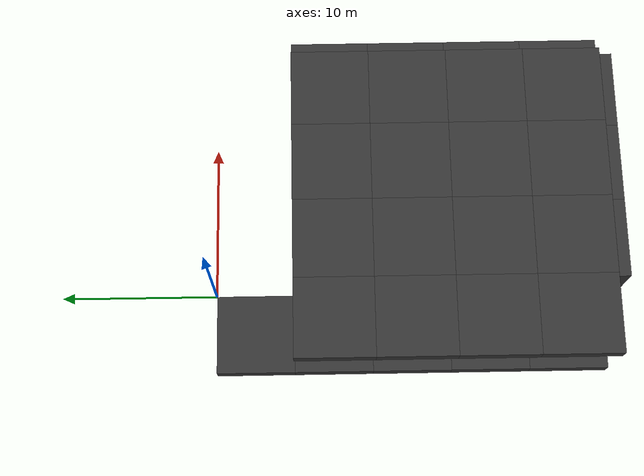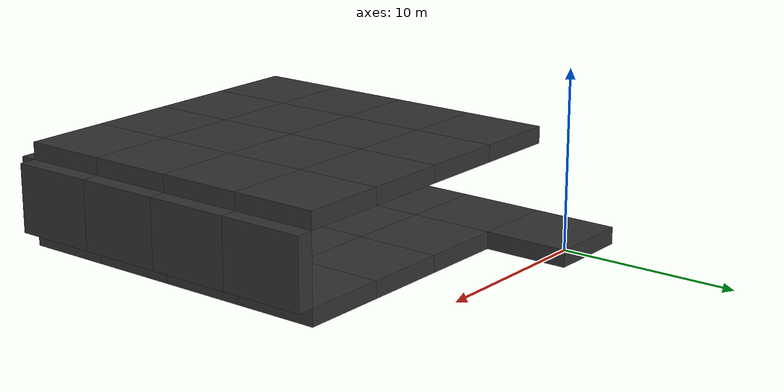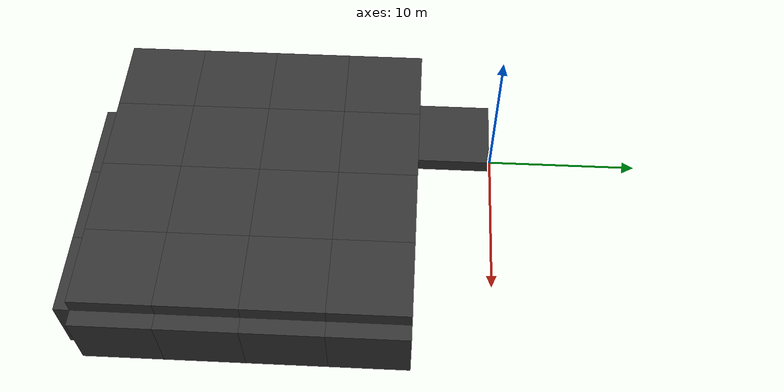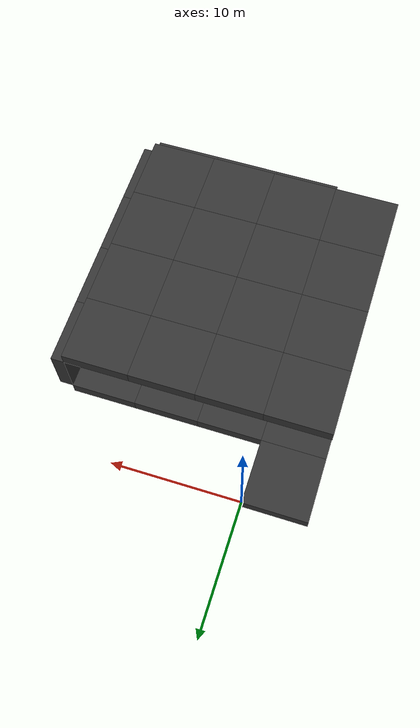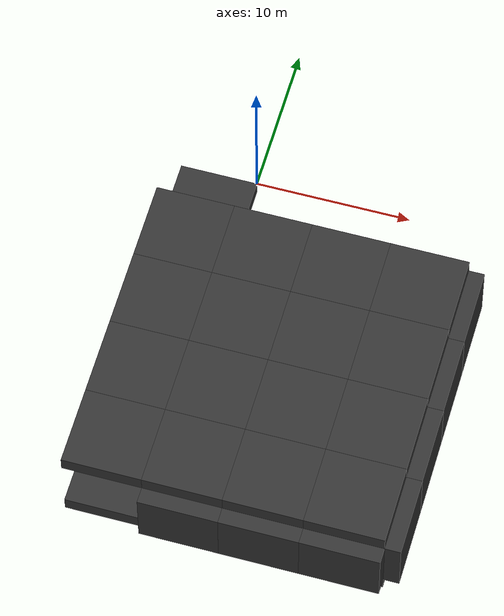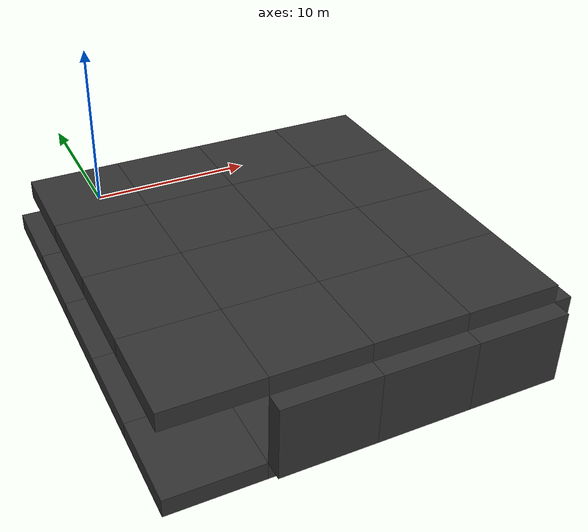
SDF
<sdf version="1.7">
 <world name="RG1">
  <model name="floor_28">
   <static>true</static>
   <pose>-2.5 -22.5 -0.5 0.0 0.0 0.0</pose>
   <link name="floor_28-base-link">
    <visual name="floor_28-visual">
     <geometry><box><size>5 5 1.0</size></box></geometry>
     <material><diffuse>0.2 0.2 0.2 1</diffuse><specular>0.1 0.1 0.1 1</specular></material>
    </visual>
    <collision name="floor_28-collision"><geometry><box><size>5 5 1.0</size></box></geometry></collision>
   </link>
  </model>
  <model name="ceiling_28">
   <static>true</static>
   <pose>-2.5 -22.5 4.5 0.0 0.0 0.0</pose>
   <link name="ceiling_28-base-link">
    <visual name="ceiling_28-visual">
     <geometry><box><size>5 5 1.0</size></box></geometry>
     <material><diffuse>0.2 0.2 0.2 1</diffuse><specular>0.1 0.1 0.1 1</specular></material>
    </visual>
    <collision name="ceiling_28-collision"><geometry><box><size>5 5 1.0</size></box></geometry></collision>
    <light type="point" name="ceiling_28-light">
     <pose>0 0 -1 0 0 0</pose>
     <cast_shadows>false</cast_shadows>
     <diffuse>0.8 0.8 0.8 1</diffuse>
     <attenuation>
      <range>10</range>
      <constant>0.8</constant>
      <linear>0.05</linear>
      <quadratic>0.01</quadratic>
     </attenuation>
    </light>
   </link>
  </model>
  <model name="floor_29">
   <static>true</static>
   <pose>-2.5 -17.5 -0.5 0.0 0.0 0.0</pose>
   <link name="floor_29-base-link">
    <visual name="floor_29-visual">
     <geometry><box><size>5 5 1.0</size></box></geometry>
     <material><diffuse>0.2 0.2 0.2 1</diffuse><specular>0.1 0.1 0.1 1</specular></material>
    </visual>
    <collision name="floor_29-collision"><geometry><box><size>5 5 1.0</size></box></geometry></collision>
   </link>
  </model>
  <model name="ceiling_29">
   <static>true</static>
   <pose>-2.5 -17.5 4.5 0.0 0.0 0.0</pose>
   <link name="ceiling_29-base-link">
    <visual name="ceiling_29-visual">
     <geometry><box><size>5 5 1.0</size></box></geometry>
     <material><diffuse>0.2 0.2 0.2 1</diffuse><specular>0.1 0.1 0.1 1</specular></material>
    </visual>
    <collision name="ceiling_29-collision"><geometry><box><size>5 5 1.0</size></box></geometry></collision>
    <light type="point" name="ceiling_29-light">
     <pose>0 0 -1 0 0 0</pose>
     <cast_shadows>false</cast_shadows>
     <diffuse>0.8 0.8 0.8 1</diffuse>
     <attenuation>
      <range>10</range>
      <constant>0.8</constant>
      <linear>0.05</linear>
      <quadratic>0.01</quadratic>
     </attenuation>
    </light>
   </link>
  </model>
  <model name="floor_30">
   <static>true</static>
   <pose>-2.5 -12.5 -0.5 0.0 0.0 0.0</pose>
   <link name="floor_30-base-link">
    <visual name="floor_30-visual">
     <geometry><box><size>5 5 1.0</size></box></geometry>
     <material><diffuse>0.2 0.2 0.2 1</diffuse><specular>0.1 0.1 0.1 1</specular></material>
    </visual>
    <collision name="floor_30-collision"><geometry><box><size>5 5 1.0</size></box></geometry></collision>
   </link>
  </model>
  <model name="ceiling_30">
   <static>true</static>
   <pose>-2.5 -12.5 4.5 0.0 0.0 0.0</pose>
   <link name="ceiling_30-base-link">
    <visual name="ceiling_30-visual">
     <geometry><box><size>5 5 1.0</size></box></geometry>
     <material><diffuse>0.2 0.2 0.2 1</diffuse><specular>0.1 0.1 0.1 1</specular></material>
    </visual>
    <collision name="ceiling_30-collision"><geometry><box><size>5 5 1.0</size></box></geometry></collision>
    <light type="point" name="ceiling_30-light">
     <pose>0 0 -1 0 0 0</pose>
     <cast_shadows>false</cast_shadows>
     <diffuse>0.8 0.8 0.8 1</diffuse>
     <attenuation>
      <range>10</range>
      <constant>0.8</constant>
      <linear>0.05</linear>
      <quadratic>0.01</quadratic>
     </attenuation>
    </light>
   </link>
  </model>
  <model name="floor_31">
   <static>true</static>
   <pose>-2.5 -7.5 -0.5 0.0 0.0 0.0</pose>
   <link name="floor_31-base-link">
    <visual name="floor_31-visual">
     <geometry><box><size>5 5 1.0</size></box></geometry>
     <material><diffuse>0.2 0.2 0.2 1</diffuse><specular>0.1 0.1 0.1 1</specular></material>
    </visual>
    <collision name="floor_31-collision"><geometry><box><size>5 5 1.0</size></box></geometry></collision>
   </link>
  </model>
  <model name="ceiling_31">
   <static>true</static>
   <pose>-2.5 -7.5 4.5 0.0 0.0 0.0</pose>
   <link name="ceiling_31-base-link">
    <visual name="ceiling_31-visual">
     <geometry><box><size>5 5 1.0</size></box></geometry>
     <material><diffuse>0.2 0.2 0.2 1</diffuse><specular>0.1 0.1 0.1 1</specular></material>
    </visual>
    <collision name="ceiling_31-collision"><geometry><box><size>5 5 1.0</size></box></geometry></collision>
    <light type="point" name="ceiling_31-light">
     <pose>0 0 -1 0 0 0</pose>
     <cast_shadows>false</cast_shadows>
     <diffuse>0.8 0.8 0.8 1</diffuse>
     <attenuation>
      <range>10</range>
      <constant>0.8</constant>
      <linear>0.05</linear>
      <quadratic>0.01</quadratic>
     </attenuation>
    </light>
   </link>
  </model>
  <model name="floor_32">
   <static>true</static>
   <pose>-2.5 -2.5 -0.5 0.0 0.0 0.0</pose>
   <link name="floor_32-base-link">
    <visual name="floor_32-visual">
     <geometry><box><size>5 5 1.0</size></box></geometry>
     <material><diffuse>0.2 0.2 0.2 1</diffuse><specular>0.1 0.1 0.1 1</specular></material>
    </visual>
    <collision name="floor_32-collision"><geometry><box><size>5 5 1.0</size></box></geometry></collision>
   </link>
  </model>
  <model name="floor_37">
   <static>true</static>
   <pose>2.5 -22.5 -0.5 0.0 0.0 0.0</pose>
   <link name="floor_37-base-link">
    <visual name="floor_37-visual">
     <geometry><box><size>5 5 1.0</size></box></geometry>
     <material><diffuse>0.2 0.2 0.2 1</diffuse><specular>0.1 0.1 0.1 1</specular></material>
    </visual>
    <collision name="floor_37-collision"><geometry><box><size>5 5 1.0</size></box></geometry></collision>
   </link>
  </model>
  <model name="ceiling_37">
   <static>true</static>
   <pose>2.5 -22.5 4.5 0.0 0.0 0.0</pose>
   <link name="ceiling_37-base-link">
    <visual name="ceiling_37-visual">
     <geometry><box><size>5 5 1.0</size></box></geometry>
     <material><diffuse>0.2 0.2 0.2 1</diffuse><specular>0.1 0.1 0.1 1</specular></material>
    </visual>
    <collision name="ceiling_37-collision"><geometry><box><size>5 5 1.0</size></box></geometry></collision>
    <light type="point" name="ceiling_37-light">
     <pose>0 0 -1 0 0 0</pose>
     <cast_shadows>false</cast_shadows>
     <diffuse>0.8 0.8 0.8 1</diffuse>
     <attenuation>
      <range>10</range>
      <constant>0.8</constant>
      <linear>0.05</linear>
      <quadratic>0.01</quadratic>
     </attenuation>
    </light>
   </link>
  </model>
  <model name="wall_18">
   <static>true</static>
   <pose>2.5 -25.5 2.0 0.0 0.0 0.0</pose>
   <link name="wall_18-base-link">
    <visual name="wall_18-visual">
     <geometry><box><size>5 1 4</size></box></geometry>
     <material><diffuse>0.2 0.2 0.2 1</diffuse><specular>0.1 0.1 0.1 1</specular></material>
    </visual>
    <collision name="wall_18-collision"><geometry><box><size>5 1 4</size></box></geometry></collision>
   </link>
  </model>
  <model name="floor_38">
   <static>true</static>
   <pose>2.5 -17.5 -0.5 0.0 0.0 0.0</pose>
   <link name="floor_38-base-link">
    <visual name="floor_38-visual">
     <geometry><box><size>5 5 1.0</size></box></geometry>
     <material><diffuse>0.2 0.2 0.2 1</diffuse><specular>0.1 0.1 0.1 1</specular></material>
    </visual>
    <collision name="floor_38-collision"><geometry><box><size>5 5 1.0</size></box></geometry></collision>
   </link>
  </model>
  <model name="ceiling_38">
   <static>true</static>
   <pose>2.5 -17.5 4.5 0.0 0.0 0.0</pose>
   <link name="ceiling_38-base-link">
    <visual name="ceiling_38-visual">
     <geometry><box><size>5 5 1.0</size></box></geometry>
     <material><diffuse>0.2 0.2 0.2 1</diffuse><specular>0.1 0.1 0.1 1</specular></material>
    </visual>
    <collision name="ceiling_38-collision"><geometry><box><size>5 5 1.0</size></box></geometry></collision>
    <light type="point" name="ceiling_38-light">
     <pose>0 0 -1 0 0 0</pose>
     <cast_shadows>false</cast_shadows>
     <diffuse>0.8 0.8 0.8 1</diffuse>
     <attenuation>
      <range>10</range>
      <constant>0.8</constant>
      <linear>0.05</linear>
      <quadratic>0.01</quadratic>
     </attenuation>
    </light>
   </link>
  </model>
  <model name="floor_39">
   <static>true</static>
   <pose>2.5 -12.5 -0.5 0.0 0.0 0.0</pose>
   <link name="floor_39-base-link">
    <visual name="floor_39-visual">
     <geometry><box><size>5 5 1.0</size></box></geometry>
     <material><diffuse>0.2 0.2 0.2 1</diffuse><specular>0.1 0.1 0.1 1</specular></material>
    </visual>
    <collision name="floor_39-collision"><geometry><box><size>5 5 1.0</size></box></geometry></collision>
   </link>
  </model>
  <model name="ceiling_39">
   <static>true</static>
   <pose>2.5 -12.5 4.5 0.0 0.0 0.0</pose>
   <link name="ceiling_39-base-link">
    <visual name="ceiling_39-visual">
     <geometry><box><size>5 5 1.0</size></box></geometry>
     <material><diffuse>0.2 0.2 0.2 1</diffuse><specular>0.1 0.1 0.1 1</specular></material>
    </visual>
    <collision name="ceiling_39-collision"><geometry><box><size>5 5 1.0</size></box></geometry></collision>
    <light type="point" name="ceiling_39-light">
     <pose>0 0 -1 0 0 0</pose>
     <cast_shadows>false</cast_shadows>
     <diffuse>0.8 0.8 0.8 1</diffuse>
     <attenuation>
      <range>10</range>
      <constant>0.8</constant>
      <linear>0.05</linear>
      <quadratic>0.01</quadratic>
     </attenuation>
    </light>
   </link>
  </model>
  <model name="floor_40">
   <static>true</static>
   <pose>2.5 -7.5 -0.5 0.0 0.0 0.0</pose>
   <link name="floor_40-base-link">
    <visual name="floor_40-visual">
     <geometry><box><size>5 5 1.0</size></box></geometry>
     <material><diffuse>0.2 0.2 0.2 1</diffuse><specular>0.1 0.1 0.1 1</specular></material>
    </visual>
    <collision name="floor_40-collision"><geometry><box><size>5 5 1.0</size></box></geometry></collision>
   </link>
  </model>
  <model name="ceiling_40">
   <static>true</static>
   <pose>2.5 -7.5 4.5 0.0 0.0 0.0</pose>
   <link name="ceiling_40-base-link">
    <visual name="ceiling_40-visual">
     <geometry><box><size>5 5 1.0</size></box></geometry>
     <material><diffuse>0.2 0.2 0.2 1</diffuse><specular>0.1 0.1 0.1 1</specular></material>
    </visual>
    <collision name="ceiling_40-collision"><geometry><box><size>5 5 1.0</size></box></geometry></collision>
    <light type="point" name="ceiling_40-light">
     <pose>0 0 -1 0 0 0</pose>
     <cast_shadows>false</cast_shadows>
     <diffuse>0.8 0.8 0.8 1</diffuse>
     <attenuation>
      <range>10</range>
      <constant>0.8</constant>
      <linear>0.05</linear>
      <quadratic>0.01</quadratic>
     </attenuation>
    </light>
   </link>
  </model>
  <model name="floor_46">
   <static>true</static>
   <pose>7.5 -22.5 -0.5 0.0 0.0 0.0</pose>
   <link name="floor_46-base-link">
    <visual name="floor_46-visual">
     <geometry><box><size>5 5 1.0</size></box></geometry>
     <material><diffuse>0.2 0.2 0.2 1</diffuse><specular>0.1 0.1 0.1 1</specular></material>
    </visual>
    <collision name="floor_46-collision"><geometry><box><size>5 5 1.0</size></box></geometry></collision>
   </link>
  </model>
  <model name="ceiling_46">
   <static>true</static>
   <pose>7.5 -22.5 4.5 0.0 0.0 0.0</pose>
   <link name="ceiling_46-base-link">
    <visual name="ceiling_46-visual">
     <geometry><box><size>5 5 1.0</size></box></geometry>
     <material><diffuse>0.2 0.2 0.2 1</diffuse><specular>0.1 0.1 0.1 1</specular></material>
    </visual>
    <collision name="ceiling_46-collision"><geometry><box><size>5 5 1.0</size></box></geometry></collision>
    <light type="point" name="ceiling_46-light">
     <pose>0 0 -1 0 0 0</pose>
     <cast_shadows>false</cast_shadows>
     <diffuse>0.8 0.8 0.8 1</diffuse>
     <attenuation>
      <range>10</range>
      <constant>0.8</constant>
      <linear>0.05</linear>
      <quadratic>0.01</quadratic>
     </attenuation>
    </light>
   </link>
  </model>
  <model name="wall_20">
   <static>true</static>
   <pose>7.5 -25.5 2.0 0.0 0.0 0.0</pose>
   <link name="wall_20-base-link">
    <visual name="wall_20-visual">
     <geometry><box><size>5 1 4</size></box></geometry>
     <material><diffuse>0.2 0.2 0.2 1</diffuse><specular>0.1 0.1 0.1 1</specular></material>
    </visual>
    <collision name="wall_20-collision"><geometry><box><size>5 1 4</size></box></geometry></collision>
   </link>
  </model>
  <model name="floor_47">
   <static>true</static>
   <pose>7.5 -17.5 -0.5 0.0 0.0 0.0</pose>
   <link name="floor_47-base-link">
    <visual name="floor_47-visual">
     <geometry><box><size>5 5 1.0</size></box></geometry>
     <material><diffuse>0.2 0.2 0.2 1</diffuse><specular>0.1 0.1 0.1 1</specular></material>
    </visual>
    <collision name="floor_47-collision"><geometry><box><size>5 5 1.0</size></box></geometry></collision>
   </link>
  </model>
  <model name="ceiling_47">
   <static>true</static>
   <pose>7.5 -17.5 4.5 0.0 0.0 0.0</pose>
   <link name="ceiling_47-base-link">
    <visual name="ceiling_47-visual">
     <geometry><box><size>5 5 1.0</size></box></geometry>
     <material><diffuse>0.2 0.2 0.2 1</diffuse><specular>0.1 0.1 0.1 1</specular></material>
    </visual>
    <collision name="ceiling_47-collision"><geometry><box><size>5 5 1.0</size></box></geometry></collision>
    <light type="point" name="ceiling_47-light">
     <pose>0 0 -1 0 0 0</pose>
     <cast_shadows>false</cast_shadows>
     <diffuse>0.8 0.8 0.8 1</diffuse>
     <attenuation>
      <range>10</range>
      <constant>0.8</constant>
      <linear>0.05</linear>
      <quadratic>0.01</quadratic>
     </attenuation>
    </light>
   </link>
  </model>
  <model name="floor_48">
   <static>true</static>
   <pose>7.5 -12.5 -0.5 0.0 0.0 0.0</pose>
   <link name="floor_48-base-link">
    <visual name="floor_48-visual">
     <geometry><box><size>5 5 1.0</size></box></geometry>
     <material><diffuse>0.2 0.2 0.2 1</diffuse><specular>0.1 0.1 0.1 1</specular></material>
    </visual>
    <collision name="floor_48-collision"><geometry><box><size>5 5 1.0</size></box></geometry></collision>
   </link>
  </model>
  <model name="ceiling_48">
   <static>true</static>
   <pose>7.5 -12.5 4.5 0.0 0.0 0.0</pose>
   <link name="ceiling_48-base-link">
    <visual name="ceiling_48-visual">
     <geometry><box><size>5 5 1.0</size></box></geometry>
     <material><diffuse>0.2 0.2 0.2 1</diffuse><specular>0.1 0.1 0.1 1</specular></material>
    </visual>
    <collision name="ceiling_48-collision"><geometry><box><size>5 5 1.0</size></box></geometry></collision>
    <light type="point" name="ceiling_48-light">
     <pose>0 0 -1 0 0 0</pose>
     <cast_shadows>false</cast_shadows>
     <diffuse>0.8 0.8 0.8 1</diffuse>
     <attenuation>
      <range>10</range>
      <constant>0.8</constant>
      <linear>0.05</linear>
      <quadratic>0.01</quadratic>
     </attenuation>
    </light>
   </link>
  </model>
  <model name="floor_49">
   <static>true</static>
   <pose>7.5 -7.5 -0.5 0.0 0.0 0.0</pose>
   <link name="floor_49-base-link">
    <visual name="floor_49-visual">
     <geometry><box><size>5 5 1.0</size></box></geometry>
     <material><diffuse>0.2 0.2 0.2 1</diffuse><specular>0.1 0.1 0.1 1</specular></material>
    </visual>
    <collision name="floor_49-collision"><geometry><box><size>5 5 1.0</size></box></geometry></collision>
   </link>
  </model>
  <model name="ceiling_49">
   <static>true</static>
   <pose>7.5 -7.5 4.5 0.0 0.0 0.0</pose>
   <link name="ceiling_49-base-link">
    <visual name="ceiling_49-visual">
     <geometry><box><size>5 5 1.0</size></box></geometry>
     <material><diffuse>0.2 0.2 0.2 1</diffuse><specular>0.1 0.1 0.1 1</specular></material>
    </visual>
    <collision name="ceiling_49-collision"><geometry><box><size>5 5 1.0</size></box></geometry></collision>
    <light type="point" name="ceiling_49-light">
     <pose>0 0 -1 0 0 0</pose>
     <cast_shadows>false</cast_shadows>
     <diffuse>0.8 0.8 0.8 1</diffuse>
     <attenuation>
      <range>10</range>
      <constant>0.8</constant>
      <linear>0.05</linear>
      <quadratic>0.01</quadratic>
     </attenuation>
    </light>
   </link>
  </model>
  <model name="floor_55">
   <static>true</static>
   <pose>12.5 -22.5 -0.5 0.0 0.0 0.0</pose>
   <link name="floor_55-base-link">
    <visual name="floor_55-visual">
     <geometry><box><size>5 5 1.0</size></box></geometry>
     <material><diffuse>0.2 0.2 0.2 1</diffuse><specular>0.1 0.1 0.1 1</specular></material>
    </visual>
    <collision name="floor_55-collision"><geometry><box><size>5 5 1.0</size></box></geometry></collision>
   </link>
  </model>
  <model name="ceiling_55">
   <static>true</static>
   <pose>12.5 -22.5 4.5 0.0 0.0 0.0</pose>
   <link name="ceiling_55-base-link">
    <visual name="ceiling_55-visual">
     <geometry><box><size>5 5 1.0</size></box></geometry>
     <material><diffuse>0.2 0.2 0.2 1</diffuse><specular>0.1 0.1 0.1 1</specular></material>
    </visual>
    <collision name="ceiling_55-collision"><geometry><box><size>5 5 1.0</size></box></geometry></collision>
    <light type="point" name="ceiling_55-light">
     <pose>0 0 -1 0 0 0</pose>
     <cast_shadows>false</cast_shadows>
     <diffuse>0.8 0.8 0.8 1</diffuse>
     <attenuation>
      <range>10</range>
      <constant>0.8</constant>
      <linear>0.05</linear>
      <quadratic>0.01</quadratic>
     </attenuation>
    </light>
   </link>
  </model>
  <model name="wall_22">
   <static>true</static>
   <pose>15.5 -22.5 2.0 0.0 0.0 1.570796326795</pose>
   <link name="wall_22-base-link">
    <visual name="wall_22-visual">
     <geometry><box><size>5 1 4</size></box></geometry>
     <material><diffuse>0.2 0.2 0.2 1</diffuse><specular>0.1 0.1 0.1 1</specular></material>
    </visual>
    <collision name="wall_22-collision"><geometry><box><size>5 1 4</size></box></geometry></collision>
   </link>
  </model>
  <model name="wall_23">
   <static>true</static>
   <pose>12.5 -25.5 2.0 0.0 0.0 0.0</pose>
   <link name="wall_23-base-link">
    <visual name="wall_23-visual">
     <geometry><box><size>5 1 4</size></box></geometry>
     <material><diffuse>0.2 0.2 0.2 1</diffuse><specular>0.1 0.1 0.1 1</specular></material>
    </visual>
    <collision name="wall_23-collision"><geometry><box><size>5 1 4</size></box></geometry></collision>
   </link>
  </model>
  <model name="floor_56">
   <static>true</static>
   <pose>12.5 -17.5 -0.5 0.0 0.0 0.0</pose>
   <link name="floor_56-base-link">
    <visual name="floor_56-visual">
     <geometry><box><size>5 5 1.0</size></box></geometry>
     <material><diffuse>0.2 0.2 0.2 1</diffuse><specular>0.1 0.1 0.1 1</specular></material>
    </visual>
    <collision name="floor_56-collision"><geometry><box><size>5 5 1.0</size></box></geometry></collision>
   </link>
  </model>
  <model name="ceiling_56">
   <static>true</static>
   <pose>12.5 -17.5 4.5 0.0 0.0 0.0</pose>
   <link name="ceiling_56-base-link">
    <visual name="ceiling_56-visual">
     <geometry><box><size>5 5 1.0</size></box></geometry>
     <material><diffuse>0.2 0.2 0.2 1</diffuse><specular>0.1 0.1 0.1 1</specular></material>
    </visual>
    <collision name="ceiling_56-collision"><geometry><box><size>5 5 1.0</size></box></geometry></collision>
    <light type="point" name="ceiling_56-light">
     <pose>0 0 -1 0 0 0</pose>
     <cast_shadows>false</cast_shadows>
     <diffuse>0.8 0.8 0.8 1</diffuse>
     <attenuation>
      <range>10</range>
      <constant>0.8</constant>
      <linear>0.05</linear>
      <quadratic>0.01</quadratic>
     </attenuation>
    </light>
   </link>
  </model>
  <model name="wall_24">
   <static>true</static>
   <pose>15.5 -17.5 2.0 0.0 0.0 1.570796326795</pose>
   <link name="wall_24-base-link">
    <visual name="wall_24-visual">
     <geometry><box><size>5 1 4</size></box></geometry>
     <material><diffuse>0.2 0.2 0.2 1</diffuse><specular>0.1 0.1 0.1 1</specular></material>
    </visual>
    <collision name="wall_24-collision"><geometry><box><size>5 1 4</size></box></geometry></collision>
   </link>
  </model>
  <model name="floor_57">
   <static>true</static>
   <pose>12.5 -12.5 -0.5 0.0 0.0 0.0</pose>
   <link name="floor_57-base-link">
    <visual name="floor_57-visual">
     <geometry><box><size>5 5 1.0</size></box></geometry>
     <material><diffuse>0.2 0.2 0.2 1</diffuse><specular>0.1 0.1 0.1 1</specular></material>
    </visual>
    <collision name="floor_57-collision"><geometry><box><size>5 5 1.0</size></box></geometry></collision>
   </link>
  </model>
  <model name="ceiling_57">
   <static>true</static>
   <pose>12.5 -12.5 4.5 0.0 0.0 0.0</pose>
   <link name="ceiling_57-base-link">
    <visual name="ceiling_57-visual">
     <geometry><box><size>5 5 1.0</size></box></geometry>
     <material><diffuse>0.2 0.2 0.2 1</diffuse><specular>0.1 0.1 0.1 1</specular></material>
    </visual>
    <collision name="ceiling_57-collision"><geometry><box><size>5 5 1.0</size></box></geometry></collision>
    <light type="point" name="ceiling_57-light">
     <pose>0 0 -1 0 0 0</pose>
     <cast_shadows>false</cast_shadows>
     <diffuse>0.8 0.8 0.8 1</diffuse>
     <attenuation>
      <range>10</range>
      <constant>0.8</constant>
      <linear>0.05</linear>
      <quadratic>0.01</quadratic>
     </attenuation>
    </light>
   </link>
  </model>
  <model name="wall_25">
   <static>true</static>
   <pose>15.5 -12.5 2.0 0.0 0.0 1.570796326795</pose>
   <link name="wall_25-base-link">
    <visual name="wall_25-visual">
     <geometry><box><size>5 1 4</size></box></geometry>
     <material><diffuse>0.2 0.2 0.2 1</diffuse><specular>0.1 0.1 0.1 1</specular></material>
    </visual>
    <collision name="wall_25-collision"><geometry><box><size>5 1 4</size></box></geometry></collision>
   </link>
  </model>
  <model name="floor_58">
   <static>true</static>
   <pose>12.5 -7.5 -0.5 0.0 0.0 0.0</pose>
   <link name="floor_58-base-link">
    <visual name="floor_58-visual">
     <geometry><box><size>5 5 1.0</size></box></geometry>
     <material><diffuse>0.2 0.2 0.2 1</diffuse><specular>0.1 0.1 0.1 1</specular></material>
    </visual>
    <collision name="floor_58-collision"><geometry><box><size>5 5 1.0</size></box></geometry></collision>
   </link>
  </model>
  <model name="ceiling_58">
   <static>true</static>
   <pose>12.5 -7.5 4.5 0.0 0.0 0.0</pose>
   <link name="ceiling_58-base-link">
    <visual name="ceiling_58-visual">
     <geometry><box><size>5 5 1.0</size></box></geometry>
     <material><diffuse>0.2 0.2 0.2 1</diffuse><specular>0.1 0.1 0.1 1</specular></material>
    </visual>
    <collision name="ceiling_58-collision"><geometry><box><size>5 5 1.0</size></box></geometry></collision>
    <light type="point" name="ceiling_58-light">
     <pose>0 0 -1 0 0 0</pose>
     <cast_shadows>false</cast_shadows>
     <diffuse>0.8 0.8 0.8 1</diffuse>
     <attenuation>
      <range>10</range>
      <constant>0.8</constant>
      <linear>0.05</linear>
      <quadratic>0.01</quadratic>
     </attenuation>
    </light>
   </link>
  </model>
  <model name="wall_26">
   <static>true</static>
   <pose>15.5 -7.5 2.0 0.0 0.0 1.570796326795</pose>
   <link name="wall_26-base-link">
    <visual name="wall_26-visual">
     <geometry><box><size>5 1 4</size></box></geometry>
     <material><diffuse>0.2 0.2 0.2 1</diffuse><specular>0.1 0.1 0.1 1</specular></material>
    </visual>
    <collision name="wall_26-collision"><geometry><box><size>5 1 4</size></box></geometry></collision>
   </link>
  </model>
 </world>
</sdf>
